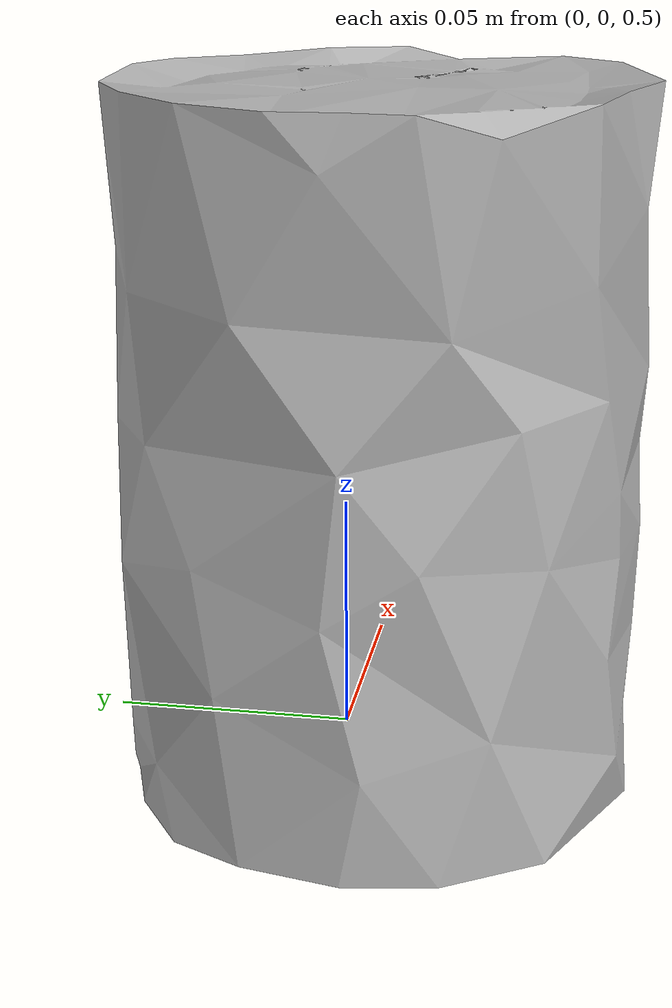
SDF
<sdf version="1.6">
   <model name="cafe_can">
       <pose>0 0 0.5 0 0 0</pose>
       <link name="link_00">
       <pose>0.0 0 0 0 0 0</pose>
       <visual name="visual_00">
           <geometry>
               <mesh><uri>file://cafe_can/textured.dae</uri></mesh>
           </geometry>
       </visual>
       <collision name="collision">
           <geometry>
               <mesh><uri>file://cafe_can/textured.dae</uri></mesh>
           </geometry>
       </collision>
       <inertial>
           <pose> -0.017 -0.01 0.07 0 0 0</pose>
           <inertia>
               <ixx>0.00022</ixx>
               <ixy>0.0</ixy>
               <ixz>0.0</ixz>
               <iyy>0.00022</iyy>
               <iyz>0.0</iyz>
               <izz>0.00013000000000000002</izz>
           </inertia>
       </inertial>
       </link>
   </model>
</sdf>
